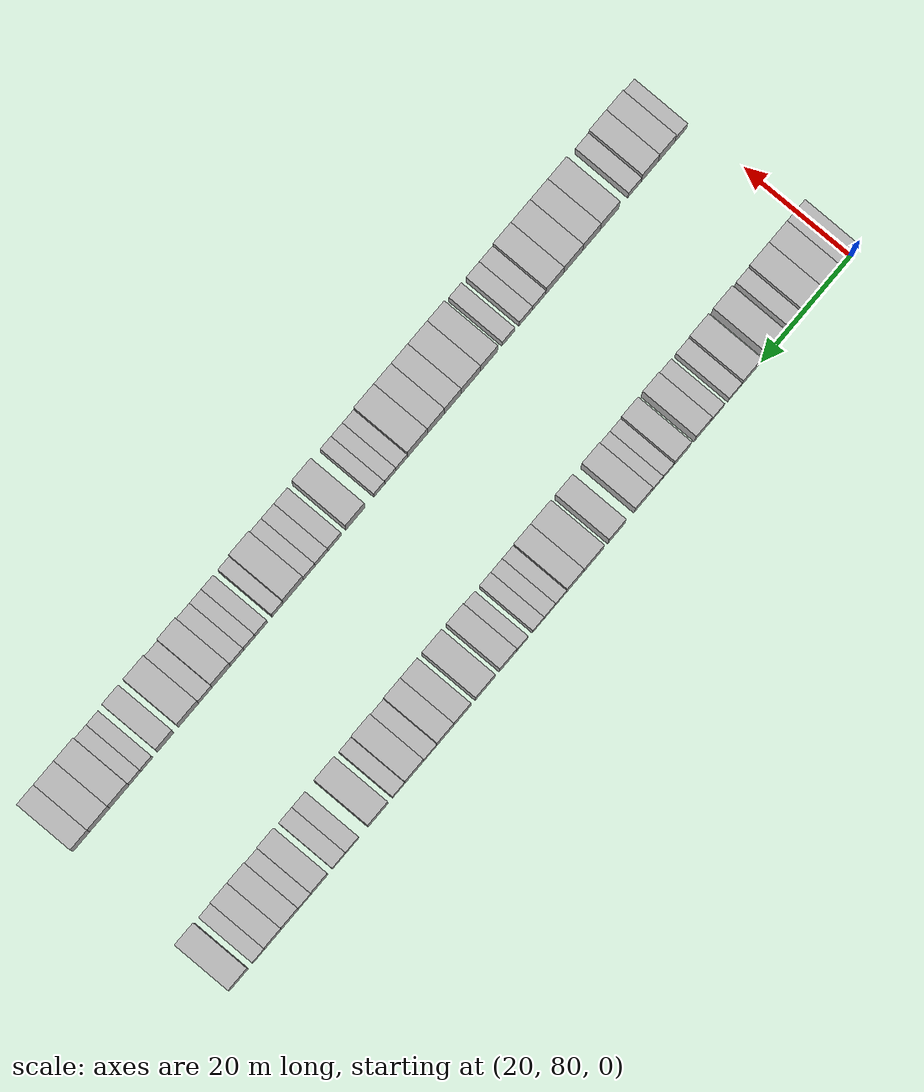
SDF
<sdf version="1.6">
 <world name="default">
  <model name="building_135">
   <static>1</static>
   <pose>25.0000 81.0025 0 0.000000 0.000000 0.000000</pose>
   <link name="link">
    <pose>0 0 4.50 0 0 0</pose>
    <collision name="collision"><geometry><box><size>10.0000 3.9946 9.0000</size></box></geometry></collision>
    <visual name="visual">
     <cast_shadows>0</cast_shadows>
     <geometry><box><size>10.0000 3.9946 9.0000</size></box></geometry>
     <material>
      <script>
       <uri>model://HANNAS_wall/materials/scripts</uri>
       <uri>model://HANNAS_wall/materials/textures</uri>
       <name>vrc/HANNAS_wall</name>
      </script>
     </material>
    </visual>
   </link>
  </model>
  <model name="building_136">
   <static>1</static>
   <pose>25.0000 85.0205 0 0.000000 0.000000 0.000000</pose>
   <link name="link">
    <pose>0 0 4.50 0 0 0</pose>
    <collision name="collision"><geometry><box><size>10.0000 4.0415 9.0000</size></box></geometry></collision>
    <visual name="visual">
     <cast_shadows>0</cast_shadows>
     <geometry><box><size>10.0000 4.0415 9.0000</size></box></geometry>
     <material>
      <script>
       <uri>model://HANNAS_wall/materials/scripts</uri>
       <uri>model://HANNAS_wall/materials/textures</uri>
       <name>vrc/HANNAS_wall</name>
      </script>
     </material>
    </visual>
   </link>
  </model>
  <model name="building_137">
   <static>1</static>
   <pose>25.0000 89.2116 0 0.000000 0.000000 0.000000</pose>
   <link name="link">
    <pose>0 0 4.50 0 0 0</pose>
    <collision name="collision"><geometry><box><size>10.0000 4.3407 9.0000</size></box></geometry></collision>
    <visual name="visual">
     <cast_shadows>0</cast_shadows>
     <geometry><box><size>10.0000 4.3407 9.0000</size></box></geometry>
     <material>
      <script>
       <uri>model://HANNAS_wall/materials/scripts</uri>
       <uri>model://HANNAS_wall/materials/textures</uri>
       <name>vrc/HANNAS_wall</name>
      </script>
     </material>
    </visual>
   </link>
  </model>
  <model name="building_138">
   <static>1</static>
   <pose>25.0000 92.7834 0 0.000000 0.000000 0.000000</pose>
   <link name="link">
    <pose>0 0 3.00 0 0 0</pose>
    <collision name="collision"><geometry><box><size>10.0000 2.8030 6.0000</size></box></geometry></collision>
    <visual name="visual">
     <cast_shadows>0</cast_shadows>
     <geometry><box><size>10.0000 2.8030 6.0000</size></box></geometry>
     <material>
      <script>
       <uri>model://HANNAS_wall/materials/scripts</uri>
       <uri>model://HANNAS_wall/materials/textures</uri>
       <name>vrc/HANNAS_wall</name>
      </script>
     </material>
    </visual>
   </link>
  </model>
  <model name="building_139">
   <static>1</static>
   <pose>25.0000 97.3180 0 0.000000 0.000000 0.000000</pose>
   <link name="link">
    <pose>0 0 4.50 0 0 0</pose>
    <collision name="collision"><geometry><box><size>10.0000 4.2662 9.0000</size></box></geometry></collision>
    <visual name="visual">
     <cast_shadows>0</cast_shadows>
     <geometry><box><size>10.0000 4.2662 9.0000</size></box></geometry>
     <material>
      <script>
       <uri>model://HANNAS_wall/materials/scripts</uri>
       <uri>model://HANNAS_wall/materials/textures</uri>
       <name>vrc/HANNAS_wall</name>
      </script>
     </material>
    </visual>
   </link>
  </model>
  <model name="building_140">
   <static>1</static>
   <pose>25.0000 102.5534 0 0.000000 0.000000 0.000000</pose>
   <link name="link">
    <pose>0 0 4.50 0 0 0</pose>
    <collision name="collision"><geometry><box><size>10.0000 4.2045 9.0000</size></box></geometry></collision>
    <visual name="visual">
     <cast_shadows>0</cast_shadows>
     <geometry><box><size>10.0000 4.2045 9.0000</size></box></geometry>
     <material>
      <script>
       <uri>model://HANNAS_wall/materials/scripts</uri>
       <uri>model://HANNAS_wall/materials/textures</uri>
       <name>vrc/HANNAS_wall</name>
      </script>
     </material>
    </visual>
   </link>
  </model>
  <model name="building_141">
   <static>1</static>
   <pose>25.0000 106.1143 0 0.000000 0.000000 0.000000</pose>
   <link name="link">
    <pose>0 0 3.00 0 0 0</pose>
    <collision name="collision"><geometry><box><size>10.0000 2.9174 6.0000</size></box></geometry></collision>
    <visual name="visual">
     <cast_shadows>0</cast_shadows>
     <geometry><box><size>10.0000 2.9174 6.0000</size></box></geometry>
     <material>
      <script>
       <uri>model://HANNAS_wall/materials/scripts</uri>
       <uri>model://HANNAS_wall/materials/textures</uri>
       <name>vrc/HANNAS_wall</name>
      </script>
     </material>
    </visual>
   </link>
  </model>
  <model name="building_142">
   <static>1</static>
   <pose>25.0000 110.0059 0 0.000000 0.000000 0.000000</pose>
   <link name="link">
    <pose>0 0 3.00 0 0 0</pose>
    <collision name="collision"><geometry><box><size>10.0000 2.8657 6.0000</size></box></geometry></collision>
    <visual name="visual">
     <cast_shadows>0</cast_shadows>
     <geometry><box><size>10.0000 2.8657 6.0000</size></box></geometry>
     <material>
      <script>
       <uri>model://HANNAS_wall/materials/scripts</uri>
       <uri>model://HANNAS_wall/materials/textures</uri>
       <name>vrc/HANNAS_wall</name>
      </script>
     </material>
    </visual>
   </link>
  </model>
  <model name="building_143">
   <static>1</static>
   <pose>25.0000 113.2572 0 0.000000 0.000000 0.000000</pose>
   <link name="link">
    <pose>0 0 4.50 0 0 0</pose>
    <collision name="collision"><geometry><box><size>10.0000 3.6370 9.0000</size></box></geometry></collision>
    <visual name="visual">
     <cast_shadows>0</cast_shadows>
     <geometry><box><size>10.0000 3.6370 9.0000</size></box></geometry>
     <material>
      <script>
       <uri>model://HANNAS_wall/materials/scripts</uri>
       <uri>model://HANNAS_wall/materials/textures</uri>
       <name>vrc/HANNAS_wall</name>
      </script>
     </material>
    </visual>
   </link>
  </model>
  <model name="building_144">
   <static>1</static>
   <pose>25.0000 117.9336 0 0.000000 0.000000 0.000000</pose>
   <link name="link">
    <pose>0 0 4.50 0 0 0</pose>
    <collision name="collision"><geometry><box><size>10.0000 3.7158 9.0000</size></box></geometry></collision>
    <visual name="visual">
     <cast_shadows>0</cast_shadows>
     <geometry><box><size>10.0000 3.7158 9.0000</size></box></geometry>
     <material>
      <script>
       <uri>model://HANNAS_wall/materials/scripts</uri>
       <uri>model://HANNAS_wall/materials/textures</uri>
       <name>vrc/HANNAS_wall</name>
      </script>
     </material>
    </visual>
   </link>
  </model>
  <model name="building_145">
   <static>1</static>
   <pose>25.0000 120.9934 0 0.000000 0.000000 0.000000</pose>
   <link name="link">
    <pose>0 0 3.00 0 0 0</pose>
    <collision name="collision"><geometry><box><size>10.0000 2.4037 6.0000</size></box></geometry></collision>
    <visual name="visual">
     <cast_shadows>0</cast_shadows>
     <geometry><box><size>10.0000 2.4037 6.0000</size></box></geometry>
     <material>
      <script>
       <uri>model://HANNAS_wall/materials/scripts</uri>
       <uri>model://HANNAS_wall/materials/textures</uri>
       <name>vrc/HANNAS_wall</name>
      </script>
     </material>
    </visual>
   </link>
  </model>
  <model name="building_146">
   <static>1</static>
   <pose>25.0000 123.4049 0 0.000000 0.000000 0.000000</pose>
   <link name="link">
    <pose>0 0 3.00 0 0 0</pose>
    <collision name="collision"><geometry><box><size>10.0000 2.4194 6.0000</size></box></geometry></collision>
    <visual name="visual">
     <cast_shadows>0</cast_shadows>
     <geometry><box><size>10.0000 2.4194 6.0000</size></box></geometry>
     <material>
      <script>
       <uri>model://HANNAS_wall/materials/scripts</uri>
       <uri>model://HANNAS_wall/materials/textures</uri>
       <name>vrc/HANNAS_wall</name>
      </script>
     </material>
    </visual>
   </link>
  </model>
  <model name="building_147">
   <static>1</static>
   <pose>25.0000 126.5805 0 0.000000 0.000000 0.000000</pose>
   <link name="link">
    <pose>0 0 4.50 0 0 0</pose>
    <collision name="collision"><geometry><box><size>10.0000 3.9317 9.0000</size></box></geometry></collision>
    <visual name="visual">
     <cast_shadows>0</cast_shadows>
     <geometry><box><size>10.0000 3.9317 9.0000</size></box></geometry>
     <material>
      <script>
       <uri>model://HANNAS_wall/materials/scripts</uri>
       <uri>model://HANNAS_wall/materials/textures</uri>
       <name>vrc/HANNAS_wall</name>
      </script>
     </material>
    </visual>
   </link>
  </model>
  <model name="building_148">
   <static>1</static>
   <pose>25.0000 132.4584 0 0.000000 0.000000 0.000000</pose>
   <link name="link">
    <pose>0 0 4.50 0 0 0</pose>
    <collision name="collision"><geometry><box><size>10.0000 3.8242 9.0000</size></box></geometry></collision>
    <visual name="visual">
     <cast_shadows>0</cast_shadows>
     <geometry><box><size>10.0000 3.8242 9.0000</size></box></geometry>
     <material>
      <script>
       <uri>model://HANNAS_wall/materials/scripts</uri>
       <uri>model://HANNAS_wall/materials/textures</uri>
       <name>vrc/HANNAS_wall</name>
      </script>
     </material>
    </visual>
   </link>
  </model>
  <model name="building_149">
   <static>1</static>
   <pose>25.0000 137.6101 0 0.000000 0.000000 0.000000</pose>
   <link name="link">
    <pose>0 0 4.50 0 0 0</pose>
    <collision name="collision"><geometry><box><size>10.0000 4.4792 9.0000</size></box></geometry></collision>
    <visual name="visual">
     <cast_shadows>0</cast_shadows>
     <geometry><box><size>10.0000 4.4792 9.0000</size></box></geometry>
     <material>
      <script>
       <uri>model://HANNAS_wall/materials/scripts</uri>
       <uri>model://HANNAS_wall/materials/textures</uri>
       <name>vrc/HANNAS_wall</name>
      </script>
     </material>
    </visual>
   </link>
  </model>
  <model name="building_150">
   <static>1</static>
   <pose>25.0000 141.7376 0 0.000000 0.000000 0.000000</pose>
   <link name="link">
    <pose>0 0 4.50 0 0 0</pose>
    <collision name="collision"><geometry><box><size>10.0000 3.7758 9.0000</size></box></geometry></collision>
    <visual name="visual">
     <cast_shadows>0</cast_shadows>
     <geometry><box><size>10.0000 3.7758 9.0000</size></box></geometry>
     <material>
      <script>
       <uri>model://HANNAS_wall/materials/scripts</uri>
       <uri>model://HANNAS_wall/materials/textures</uri>
       <name>vrc/HANNAS_wall</name>
      </script>
     </material>
    </visual>
   </link>
  </model>
  <model name="building_151">
   <static>1</static>
   <pose>25.0000 144.8500 0 0.000000 0.000000 0.000000</pose>
   <link name="link">
    <pose>0 0 3.00 0 0 0</pose>
    <collision name="collision"><geometry><box><size>10.0000 2.4491 6.0000</size></box></geometry></collision>
    <visual name="visual">
     <cast_shadows>0</cast_shadows>
     <geometry><box><size>10.0000 2.4491 6.0000</size></box></geometry>
     <material>
      <script>
       <uri>model://HANNAS_wall/materials/scripts</uri>
       <uri>model://HANNAS_wall/materials/textures</uri>
       <name>vrc/HANNAS_wall</name>
      </script>
     </material>
    </visual>
   </link>
  </model>
  <model name="building_152">
   <static>1</static>
   <pose>25.0000 147.3446 0 0.000000 0.000000 0.000000</pose>
   <link name="link">
    <pose>0 0 3.00 0 0 0</pose>
    <collision name="collision"><geometry><box><size>10.0000 2.5401 6.0000</size></box></geometry></collision>
    <visual name="visual">
     <cast_shadows>0</cast_shadows>
     <geometry><box><size>10.0000 2.5401 6.0000</size></box></geometry>
     <material>
      <script>
       <uri>model://HANNAS_wall/materials/scripts</uri>
       <uri>model://HANNAS_wall/materials/textures</uri>
       <name>vrc/HANNAS_wall</name>
      </script>
     </material>
    </visual>
   </link>
  </model>
  <model name="building_153">
   <static>1</static>
   <pose>25.0000 149.8898 0 0.000000 0.000000 0.000000</pose>
   <link name="link">
    <pose>0 0 3.00 0 0 0</pose>
    <collision name="collision"><geometry><box><size>10.0000 2.5503 6.0000</size></box></geometry></collision>
    <visual name="visual">
     <cast_shadows>0</cast_shadows>
     <geometry><box><size>10.0000 2.5503 6.0000</size></box></geometry>
     <material>
      <script>
       <uri>model://HANNAS_wall/materials/scripts</uri>
       <uri>model://HANNAS_wall/materials/textures</uri>
       <name>vrc/HANNAS_wall</name>
      </script>
     </material>
    </visual>
   </link>
  </model>
  <model name="building_154">
   <static>1</static>
   <pose>25.0000 153.4374 0 0.000000 0.000000 0.000000</pose>
   <link name="link">
    <pose>0 0 3.00 0 0 0</pose>
    <collision name="collision"><geometry><box><size>10.0000 2.5448 6.0000</size></box></geometry></collision>
    <visual name="visual">
     <cast_shadows>0</cast_shadows>
     <geometry><box><size>10.0000 2.5448 6.0000</size></box></geometry>
     <material>
      <script>
       <uri>model://HANNAS_wall/materials/scripts</uri>
       <uri>model://HANNAS_wall/materials/textures</uri>
       <name>vrc/HANNAS_wall</name>
      </script>
     </material>
    </visual>
   </link>
  </model>
  <model name="building_155">
   <static>1</static>
   <pose>25.0000 156.6061 0 0.000000 0.000000 0.000000</pose>
   <link name="link">
    <pose>0 0 4.50 0 0 0</pose>
    <collision name="collision"><geometry><box><size>10.0000 3.7926 9.0000</size></box></geometry></collision>
    <visual name="visual">
     <cast_shadows>0</cast_shadows>
     <geometry><box><size>10.0000 3.7926 9.0000</size></box></geometry>
     <material>
      <script>
       <uri>model://HANNAS_wall/materials/scripts</uri>
       <uri>model://HANNAS_wall/materials/textures</uri>
       <name>vrc/HANNAS_wall</name>
      </script>
     </material>
    </visual>
   </link>
  </model>
  <model name="building_156">
   <static>1</static>
   <pose>25.0000 161.6834 0 0.000000 0.000000 0.000000</pose>
   <link name="link">
    <pose>0 0 4.50 0 0 0</pose>
    <collision name="collision"><geometry><box><size>10.0000 4.3620 9.0000</size></box></geometry></collision>
    <visual name="visual">
     <cast_shadows>0</cast_shadows>
     <geometry><box><size>10.0000 4.3620 9.0000</size></box></geometry>
     <material>
      <script>
       <uri>model://HANNAS_wall/materials/scripts</uri>
       <uri>model://HANNAS_wall/materials/textures</uri>
       <name>vrc/HANNAS_wall</name>
      </script>
     </material>
    </visual>
   </link>
  </model>
  <model name="building_157">
   <static>1</static>
   <pose>25.0000 166.7427 0 0.000000 0.000000 0.000000</pose>
   <link name="link">
    <pose>0 0 4.50 0 0 0</pose>
    <collision name="collision"><geometry><box><size>10.0000 3.7567 9.0000</size></box></geometry></collision>
    <visual name="visual">
     <cast_shadows>0</cast_shadows>
     <geometry><box><size>10.0000 3.7567 9.0000</size></box></geometry>
     <material>
      <script>
       <uri>model://HANNAS_wall/materials/scripts</uri>
       <uri>model://HANNAS_wall/materials/textures</uri>
       <name>vrc/HANNAS_wall</name>
      </script>
     </material>
    </visual>
   </link>
  </model>
  <model name="building_158">
   <static>1</static>
   <pose>25.0000 170.4803 0 0.000000 0.000000 0.000000</pose>
   <link name="link">
    <pose>0 0 4.50 0 0 0</pose>
    <collision name="collision"><geometry><box><size>10.0000 3.7186 9.0000</size></box></geometry></collision>
    <visual name="visual">
     <cast_shadows>0</cast_shadows>
     <geometry><box><size>10.0000 3.7186 9.0000</size></box></geometry>
     <material>
      <script>
       <uri>model://HANNAS_wall/materials/scripts</uri>
       <uri>model://HANNAS_wall/materials/textures</uri>
       <name>vrc/HANNAS_wall</name>
      </script>
     </material>
    </visual>
   </link>
  </model>
  <model name="building_159">
   <static>1</static>
   <pose>25.0000 173.8217 0 0.000000 0.000000 0.000000</pose>
   <link name="link">
    <pose>0 0 3.00 0 0 0</pose>
    <collision name="collision"><geometry><box><size>10.0000 2.9641 6.0000</size></box></geometry></collision>
    <visual name="visual">
     <cast_shadows>0</cast_shadows>
     <geometry><box><size>10.0000 2.9641 6.0000</size></box></geometry>
     <material>
      <script>
       <uri>model://HANNAS_wall/materials/scripts</uri>
       <uri>model://HANNAS_wall/materials/textures</uri>
       <name>vrc/HANNAS_wall</name>
      </script>
     </material>
    </visual>
   </link>
  </model>
  <model name="building_160">
   <static>1</static>
   <pose>25.0000 177.3919 0 0.000000 0.000000 0.000000</pose>
   <link name="link">
    <pose>0 0 4.50 0 0 0</pose>
    <collision name="collision"><geometry><box><size>10.0000 4.1765 9.0000</size></box></geometry></collision>
    <visual name="visual">
     <cast_shadows>0</cast_shadows>
     <geometry><box><size>10.0000 4.1765 9.0000</size></box></geometry>
     <material>
      <script>
       <uri>model://HANNAS_wall/materials/scripts</uri>
       <uri>model://HANNAS_wall/materials/textures</uri>
       <name>vrc/HANNAS_wall</name>
      </script>
     </material>
    </visual>
   </link>
  </model>
  <model name="building_161">
   <static>1</static>
   <pose>25.0000 180.8398 0 0.000000 0.000000 0.000000</pose>
   <link name="link">
    <pose>0 0 3.00 0 0 0</pose>
    <collision name="collision"><geometry><box><size>10.0000 2.7191 6.0000</size></box></geometry></collision>
    <visual name="visual">
     <cast_shadows>0</cast_shadows>
     <geometry><box><size>10.0000 2.7191 6.0000</size></box></geometry>
     <material>
      <script>
       <uri>model://HANNAS_wall/materials/scripts</uri>
       <uri>model://HANNAS_wall/materials/textures</uri>
       <name>vrc/HANNAS_wall</name>
      </script>
     </material>
    </visual>
   </link>
  </model>
  <model name="building_162">
   <static>1</static>
   <pose>25.0000 185.4152 0 0.000000 0.000000 0.000000</pose>
   <link name="link">
    <pose>0 0 4.50 0 0 0</pose>
    <collision name="collision"><geometry><box><size>10.0000 4.4318 9.0000</size></box></geometry></collision>
    <visual name="visual">
     <cast_shadows>0</cast_shadows>
     <geometry><box><size>10.0000 4.4318 9.0000</size></box></geometry>
     <material>
      <script>
       <uri>model://HANNAS_wall/materials/scripts</uri>
       <uri>model://HANNAS_wall/materials/textures</uri>
       <name>vrc/HANNAS_wall</name>
      </script>
     </material>
    </visual>
   </link>
  </model>
  <model name="building_163">
   <static>1</static>
   <pose>25.0000 191.1005 0 0.000000 0.000000 0.000000</pose>
   <link name="link">
    <pose>0 0 3.00 0 0 0</pose>
    <collision name="collision"><geometry><box><size>10.0000 2.9388 6.0000</size></box></geometry></collision>
    <visual name="visual">
     <cast_shadows>0</cast_shadows>
     <geometry><box><size>10.0000 2.9388 6.0000</size></box></geometry>
     <material>
      <script>
       <uri>model://HANNAS_wall/materials/scripts</uri>
       <uri>model://HANNAS_wall/materials/textures</uri>
       <name>vrc/HANNAS_wall</name>
      </script>
     </material>
    </visual>
   </link>
  </model>
  <model name="building_164">
   <static>1</static>
   <pose>25.0000 194.0287 0 0.000000 0.000000 0.000000</pose>
   <link name="link">
    <pose>0 0 3.00 0 0 0</pose>
    <collision name="collision"><geometry><box><size>10.0000 2.9175 6.0000</size></box></geometry></collision>
    <visual name="visual">
     <cast_shadows>0</cast_shadows>
     <geometry><box><size>10.0000 2.9175 6.0000</size></box></geometry>
     <material>
      <script>
       <uri>model://HANNAS_wall/materials/scripts</uri>
       <uri>model://HANNAS_wall/materials/textures</uri>
       <name>vrc/HANNAS_wall</name>
      </script>
     </material>
    </visual>
   </link>
  </model>
  <model name="building_165">
   <static>1</static>
   <pose>25.0000 198.3451 0 0.000000 0.000000 0.000000</pose>
   <link name="link">
    <pose>0 0 4.50 0 0 0</pose>
    <collision name="collision"><geometry><box><size>10.0000 3.7153 9.0000</size></box></geometry></collision>
    <visual name="visual">
     <cast_shadows>0</cast_shadows>
     <geometry><box><size>10.0000 3.7153 9.0000</size></box></geometry>
     <material>
      <script>
       <uri>model://HANNAS_wall/materials/scripts</uri>
       <uri>model://HANNAS_wall/materials/textures</uri>
       <name>vrc/HANNAS_wall</name>
      </script>
     </material>
    </visual>
   </link>
  </model>
  <model name="building_166">
   <static>1</static>
   <pose>25.0000 201.5795 0 0.000000 0.000000 0.000000</pose>
   <link name="link">
    <pose>0 0 3.00 0 0 0</pose>
    <collision name="collision"><geometry><box><size>10.0000 2.7534 6.0000</size></box></geometry></collision>
    <visual name="visual">
     <cast_shadows>0</cast_shadows>
     <geometry><box><size>10.0000 2.7534 6.0000</size></box></geometry>
     <material>
      <script>
       <uri>model://HANNAS_wall/materials/scripts</uri>
       <uri>model://HANNAS_wall/materials/textures</uri>
       <name>vrc/HANNAS_wall</name>
      </script>
     </material>
    </visual>
   </link>
  </model>
  <model name="building_167">
   <static>1</static>
   <pose>25.0000 204.8351 0 0.000000 0.000000 0.000000</pose>
   <link name="link">
    <pose>0 0 4.50 0 0 0</pose>
    <collision name="collision"><geometry><box><size>10.0000 3.7579 9.0000</size></box></geometry></collision>
    <visual name="visual">
     <cast_shadows>0</cast_shadows>
     <geometry><box><size>10.0000 3.7579 9.0000</size></box></geometry>
     <material>
      <script>
       <uri>model://HANNAS_wall/materials/scripts</uri>
       <uri>model://HANNAS_wall/materials/textures</uri>
       <name>vrc/HANNAS_wall</name>
      </script>
     </material>
    </visual>
   </link>
  </model>
  <model name="building_168">
   <static>1</static>
   <pose>25.0000 208.5731 0 0.000000 0.000000 0.000000</pose>
   <link name="link">
    <pose>0 0 4.50 0 0 0</pose>
    <collision name="collision"><geometry><box><size>10.0000 3.7181 9.0000</size></box></geometry></collision>
    <visual name="visual">
     <cast_shadows>0</cast_shadows>
     <geometry><box><size>10.0000 3.7181 9.0000</size></box></geometry>
     <material>
      <script>
       <uri>model://HANNAS_wall/materials/scripts</uri>
       <uri>model://HANNAS_wall/materials/textures</uri>
       <name>vrc/HANNAS_wall</name>
      </script>
     </material>
    </visual>
   </link>
  </model>
  <model name="building_169">
   <static>1</static>
   <pose>25.0000 211.7623 0 0.000000 0.000000 0.000000</pose>
   <link name="link">
    <pose>0 0 3.00 0 0 0</pose>
    <collision name="collision"><geometry><box><size>10.0000 2.6602 6.0000</size></box></geometry></collision>
    <visual name="visual">
     <cast_shadows>0</cast_shadows>
     <geometry><box><size>10.0000 2.6602 6.0000</size></box></geometry>
     <material>
      <script>
       <uri>model://HANNAS_wall/materials/scripts</uri>
       <uri>model://HANNAS_wall/materials/textures</uri>
       <name>vrc/HANNAS_wall</name>
      </script>
     </material>
    </visual>
   </link>
  </model>
  <model name="building_170">
   <static>1</static>
   <pose>25.0000 216.1671 0 0.000000 0.000000 0.000000</pose>
   <link name="link">
    <pose>0 0 4.50 0 0 0</pose>
    <collision name="collision"><geometry><box><size>10.0000 4.1495 9.0000</size></box></geometry></collision>
    <visual name="visual">
     <cast_shadows>0</cast_shadows>
     <geometry><box><size>10.0000 4.1495 9.0000</size></box></geometry>
     <material>
      <script>
       <uri>model://HANNAS_wall/materials/scripts</uri>
       <uri>model://HANNAS_wall/materials/textures</uri>
       <name>vrc/HANNAS_wall</name>
      </script>
     </material>
    </visual>
   </link>
  </model>
  <model name="building_373">
   <static>1</static>
   <pose>55.0000 82.4450 0 0.000000 0.000000 0.000000</pose>
   <link name="link">
    <pose>0 0 3.00 0 0 0</pose>
    <collision name="collision"><geometry><box><size>10.0000 2.6679 6.0000</size></box></geometry></collision>
    <visual name="visual">
     <cast_shadows>0</cast_shadows>
     <geometry><box><size>10.0000 2.6679 6.0000</size></box></geometry>
     <material>
      <script>
       <uri>model://HANNAS_wall/materials/scripts</uri>
       <uri>model://HANNAS_wall/materials/textures</uri>
       <name>vrc/HANNAS_wall</name>
      </script>
     </material>
    </visual>
   </link>
  </model>
  <model name="building_374">
   <static>1</static>
   <pose>55.0000 85.6256 0 0.000000 0.000000 0.000000</pose>
   <link name="link">
    <pose>0 0 4.50 0 0 0</pose>
    <collision name="collision"><geometry><box><size>10.0000 3.6933 9.0000</size></box></geometry></collision>
    <visual name="visual">
     <cast_shadows>0</cast_shadows>
     <geometry><box><size>10.0000 3.6933 9.0000</size></box></geometry>
     <material>
      <script>
       <uri>model://HANNAS_wall/materials/scripts</uri>
       <uri>model://HANNAS_wall/materials/textures</uri>
       <name>vrc/HANNAS_wall</name>
      </script>
     </material>
    </visual>
   </link>
  </model>
  <model name="building_375">
   <static>1</static>
   <pose>55.0000 89.4006 0 0.000000 0.000000 0.000000</pose>
   <link name="link">
    <pose>0 0 4.50 0 0 0</pose>
    <collision name="collision"><geometry><box><size>10.0000 3.8567 9.0000</size></box></geometry></collision>
    <visual name="visual">
     <cast_shadows>0</cast_shadows>
     <geometry><box><size>10.0000 3.8567 9.0000</size></box></geometry>
     <material>
      <script>
       <uri>model://HANNAS_wall/materials/scripts</uri>
       <uri>model://HANNAS_wall/materials/textures</uri>
       <name>vrc/HANNAS_wall</name>
      </script>
     </material>
    </visual>
   </link>
  </model>
  <model name="building_376">
   <static>1</static>
   <pose>55.0000 92.8031 0 0.000000 0.000000 0.000000</pose>
   <link name="link">
    <pose>0 0 3.00 0 0 0</pose>
    <collision name="collision"><geometry><box><size>10.0000 2.9482 6.0000</size></box></geometry></collision>
    <visual name="visual">
     <cast_shadows>0</cast_shadows>
     <geometry><box><size>10.0000 2.9482 6.0000</size></box></geometry>
     <material>
      <script>
       <uri>model://HANNAS_wall/materials/scripts</uri>
       <uri>model://HANNAS_wall/materials/textures</uri>
       <name>vrc/HANNAS_wall</name>
      </script>
     </material>
    </visual>
   </link>
  </model>
  <model name="building_377">
   <static>1</static>
   <pose>55.0000 98.3676 0 0.000000 0.000000 0.000000</pose>
   <link name="link">
    <pose>0 0 4.50 0 0 0</pose>
    <collision name="collision"><geometry><box><size>10.0000 4.1808 9.0000</size></box></geometry></collision>
    <visual name="visual">
     <cast_shadows>0</cast_shadows>
     <geometry><box><size>10.0000 4.1808 9.0000</size></box></geometry>
     <material>
      <script>
       <uri>model://HANNAS_wall/materials/scripts</uri>
       <uri>model://HANNAS_wall/materials/textures</uri>
       <name>vrc/HANNAS_wall</name>
      </script>
     </material>
    </visual>
   </link>
  </model>
  <model name="building_378">
   <static>1</static>
   <pose>55.0000 102.4167 0 0.000000 0.000000 0.000000</pose>
   <link name="link">
    <pose>0 0 4.50 0 0 0</pose>
    <collision name="collision"><geometry><box><size>10.0000 3.9175 9.0000</size></box></geometry></collision>
    <visual name="visual">
     <cast_shadows>0</cast_shadows>
     <geometry><box><size>10.0000 3.9175 9.0000</size></box></geometry>
     <material>
      <script>
       <uri>model://HANNAS_wall/materials/scripts</uri>
       <uri>model://HANNAS_wall/materials/textures</uri>
       <name>vrc/HANNAS_wall</name>
      </script>
     </material>
    </visual>
   </link>
  </model>
  <model name="building_379">
   <static>1</static>
   <pose>55.0000 106.5071 0 0.000000 0.000000 0.000000</pose>
   <link name="link">
    <pose>0 0 4.50 0 0 0</pose>
    <collision name="collision"><geometry><box><size>10.0000 4.2632 9.0000</size></box></geometry></collision>
    <visual name="visual">
     <cast_shadows>0</cast_shadows>
     <geometry><box><size>10.0000 4.2632 9.0000</size></box></geometry>
     <material>
      <script>
       <uri>model://HANNAS_wall/materials/scripts</uri>
       <uri>model://HANNAS_wall/materials/textures</uri>
       <name>vrc/HANNAS_wall</name>
      </script>
     </material>
    </visual>
   </link>
  </model>
  <model name="building_380">
   <static>1</static>
   <pose>55.0000 110.6413 0 0.000000 0.000000 0.000000</pose>
   <link name="link">
    <pose>0 0 4.50 0 0 0</pose>
    <collision name="collision"><geometry><box><size>10.0000 4.0053 9.0000</size></box></geometry></collision>
    <visual name="visual">
     <cast_shadows>0</cast_shadows>
     <geometry><box><size>10.0000 4.0053 9.0000</size></box></geometry>
     <material>
      <script>
       <uri>model://HANNAS_wall/materials/scripts</uri>
       <uri>model://HANNAS_wall/materials/textures</uri>
       <name>vrc/HANNAS_wall</name>
      </script>
     </material>
    </visual>
   </link>
  </model>
  <model name="building_381">
   <static>1</static>
   <pose>55.0000 114.1329 0 0.000000 0.000000 0.000000</pose>
   <link name="link">
    <pose>0 0 3.00 0 0 0</pose>
    <collision name="collision"><geometry><box><size>10.0000 2.9778 6.0000</size></box></geometry></collision>
    <visual name="visual">
     <cast_shadows>0</cast_shadows>
     <geometry><box><size>10.0000 2.9778 6.0000</size></box></geometry>
     <material>
      <script>
       <uri>model://HANNAS_wall/materials/scripts</uri>
       <uri>model://HANNAS_wall/materials/textures</uri>
       <name>vrc/HANNAS_wall</name>
      </script>
     </material>
    </visual>
   </link>
  </model>
  <model name="building_382">
   <static>1</static>
   <pose>55.0000 117.1041 0 0.000000 0.000000 0.000000</pose>
   <link name="link">
    <pose>0 0 3.00 0 0 0</pose>
    <collision name="collision"><geometry><box><size>10.0000 2.9645 6.0000</size></box></geometry></collision>
    <visual name="visual">
     <cast_shadows>0</cast_shadows>
     <geometry><box><size>10.0000 2.9645 6.0000</size></box></geometry>
     <material>
      <script>
       <uri>model://HANNAS_wall/materials/scripts</uri>
       <uri>model://HANNAS_wall/materials/textures</uri>
       <name>vrc/HANNAS_wall</name>
      </script>
     </material>
    </visual>
   </link>
  </model>
  <model name="building_383">
   <static>1</static>
   <pose>55.0000 120.9810 0 0.000000 0.000000 0.000000</pose>
   <link name="link">
    <pose>0 0 3.00 0 0 0</pose>
    <collision name="collision"><geometry><box><size>10.0000 2.7894 6.0000</size></box></geometry></collision>
    <visual name="visual">
     <cast_shadows>0</cast_shadows>
     <geometry><box><size>10.0000 2.7894 6.0000</size></box></geometry>
     <material>
      <script>
       <uri>model://HANNAS_wall/materials/scripts</uri>
       <uri>model://HANNAS_wall/materials/textures</uri>
       <name>vrc/HANNAS_wall</name>
      </script>
     </material>
    </visual>
   </link>
  </model>
  <model name="building_384">
   <static>1</static>
   <pose>55.0000 125.2732 0 0.000000 0.000000 0.000000</pose>
   <link name="link">
    <pose>0 0 4.50 0 0 0</pose>
    <collision name="collision"><geometry><box><size>10.0000 3.7949 9.0000</size></box></geometry></collision>
    <visual name="visual">
     <cast_shadows>0</cast_shadows>
     <geometry><box><size>10.0000 3.7949 9.0000</size></box></geometry>
     <material>
      <script>
       <uri>model://HANNAS_wall/materials/scripts</uri>
       <uri>model://HANNAS_wall/materials/textures</uri>
       <name>vrc/HANNAS_wall</name>
      </script>
     </material>
    </visual>
   </link>
  </model>
  <model name="building_385">
   <static>1</static>
   <pose>55.0000 129.3147 0 0.000000 0.000000 0.000000</pose>
   <link name="link">
    <pose>0 0 4.50 0 0 0</pose>
    <collision name="collision"><geometry><box><size>10.0000 4.2881 9.0000</size></box></geometry></collision>
    <visual name="visual">
     <cast_shadows>0</cast_shadows>
     <geometry><box><size>10.0000 4.2881 9.0000</size></box></geometry>
     <material>
      <script>
       <uri>model://HANNAS_wall/materials/scripts</uri>
       <uri>model://HANNAS_wall/materials/textures</uri>
       <name>vrc/HANNAS_wall</name>
      </script>
     </material>
    </visual>
   </link>
  </model>
  <model name="building_386">
   <static>1</static>
   <pose>55.0000 133.3067 0 0.000000 0.000000 0.000000</pose>
   <link name="link">
    <pose>0 0 4.50 0 0 0</pose>
    <collision name="collision"><geometry><box><size>10.0000 3.6959 9.0000</size></box></geometry></collision>
    <visual name="visual">
     <cast_shadows>0</cast_shadows>
     <geometry><box><size>10.0000 3.6959 9.0000</size></box></geometry>
     <material>
      <script>
       <uri>model://HANNAS_wall/materials/scripts</uri>
       <uri>model://HANNAS_wall/materials/textures</uri>
       <name>vrc/HANNAS_wall</name>
      </script>
     </material>
    </visual>
   </link>
  </model>
  <model name="building_387">
   <static>1</static>
   <pose>55.0000 137.0665 0 0.000000 0.000000 0.000000</pose>
   <link name="link">
    <pose>0 0 4.50 0 0 0</pose>
    <collision name="collision"><geometry><box><size>10.0000 3.8237 9.0000</size></box></geometry></collision>
    <visual name="visual">
     <cast_shadows>0</cast_shadows>
     <geometry><box><size>10.0000 3.8237 9.0000</size></box></geometry>
     <material>
      <script>
       <uri>model://HANNAS_wall/materials/scripts</uri>
       <uri>model://HANNAS_wall/materials/textures</uri>
       <name>vrc/HANNAS_wall</name>
      </script>
     </material>
    </visual>
   </link>
  </model>
  <model name="building_388">
   <static>1</static>
   <pose>55.0000 141.2183 0 0.000000 0.000000 0.000000</pose>
   <link name="link">
    <pose>0 0 4.50 0 0 0</pose>
    <collision name="collision"><geometry><box><size>10.0000 4.4799 9.0000</size></box></geometry></collision>
    <visual name="visual">
     <cast_shadows>0</cast_shadows>
     <geometry><box><size>10.0000 4.4799 9.0000</size></box></geometry>
     <material>
      <script>
       <uri>model://HANNAS_wall/materials/scripts</uri>
       <uri>model://HANNAS_wall/materials/textures</uri>
       <name>vrc/HANNAS_wall</name>
      </script>
     </material>
    </visual>
   </link>
  </model>
  <model name="building_389">
   <static>1</static>
   <pose>55.0000 144.7116 0 0.000000 0.000000 0.000000</pose>
   <link name="link">
    <pose>0 0 3.00 0 0 0</pose>
    <collision name="collision"><geometry><box><size>10.0000 2.5068 6.0000</size></box></geometry></collision>
    <visual name="visual">
     <cast_shadows>0</cast_shadows>
     <geometry><box><size>10.0000 2.5068 6.0000</size></box></geometry>
     <material>
      <script>
       <uri>model://HANNAS_wall/materials/scripts</uri>
       <uri>model://HANNAS_wall/materials/textures</uri>
       <name>vrc/HANNAS_wall</name>
      </script>
     </material>
    </visual>
   </link>
  </model>
  <model name="building_390">
   <static>1</static>
   <pose>55.0000 147.2185 0 0.000000 0.000000 0.000000</pose>
   <link name="link">
    <pose>0 0 3.00 0 0 0</pose>
    <collision name="collision"><geometry><box><size>10.0000 2.5068 6.0000</size></box></geometry></collision>
    <visual name="visual">
     <cast_shadows>0</cast_shadows>
     <geometry><box><size>10.0000 2.5068 6.0000</size></box></geometry>
     <material>
      <script>
       <uri>model://HANNAS_wall/materials/scripts</uri>
       <uri>model://HANNAS_wall/materials/textures</uri>
       <name>vrc/HANNAS_wall</name>
      </script>
     </material>
    </visual>
   </link>
  </model>
  <model name="building_391">
   <static>1</static>
   <pose>55.0000 149.6810 0 0.000000 0.000000 0.000000</pose>
   <link name="link">
    <pose>0 0 3.00 0 0 0</pose>
    <collision name="collision"><geometry><box><size>10.0000 2.4182 6.0000</size></box></geometry></collision>
    <visual name="visual">
     <cast_shadows>0</cast_shadows>
     <geometry><box><size>10.0000 2.4182 6.0000</size></box></geometry>
     <material>
      <script>
       <uri>model://HANNAS_wall/materials/scripts</uri>
       <uri>model://HANNAS_wall/materials/textures</uri>
       <name>vrc/HANNAS_wall</name>
      </script>
     </material>
    </visual>
   </link>
  </model>
  <model name="building_392">
   <static>1</static>
   <pose>55.0000 155.0066 0 0.000000 0.000000 0.000000</pose>
   <link name="link">
    <pose>0 0 4.50 0 0 0</pose>
    <collision name="collision"><geometry><box><size>10.0000 4.2330 9.0000</size></box></geometry></collision>
    <visual name="visual">
     <cast_shadows>0</cast_shadows>
     <geometry><box><size>10.0000 4.2330 9.0000</size></box></geometry>
     <material>
      <script>
       <uri>model://HANNAS_wall/materials/scripts</uri>
       <uri>model://HANNAS_wall/materials/textures</uri>
       <name>vrc/HANNAS_wall</name>
      </script>
     </material>
    </visual>
   </link>
  </model>
  <model name="building_393">
   <static>1</static>
   <pose>55.0000 159.6211 0 0.000000 0.000000 0.000000</pose>
   <link name="link">
    <pose>0 0 3.00 0 0 0</pose>
    <collision name="collision"><geometry><box><size>10.0000 2.9959 6.0000</size></box></geometry></collision>
    <visual name="visual">
     <cast_shadows>0</cast_shadows>
     <geometry><box><size>10.0000 2.9959 6.0000</size></box></geometry>
     <material>
      <script>
       <uri>model://HANNAS_wall/materials/scripts</uri>
       <uri>model://HANNAS_wall/materials/textures</uri>
       <name>vrc/HANNAS_wall</name>
      </script>
     </material>
    </visual>
   </link>
  </model>
  <model name="building_394">
   <static>1</static>
   <pose>55.0000 162.5194 0 0.000000 0.000000 0.000000</pose>
   <link name="link">
    <pose>0 0 3.00 0 0 0</pose>
    <collision name="collision"><geometry><box><size>10.0000 2.8007 6.0000</size></box></geometry></collision>
    <visual name="visual">
     <cast_shadows>0</cast_shadows>
     <geometry><box><size>10.0000 2.8007 6.0000</size></box></geometry>
     <material>
      <script>
       <uri>model://HANNAS_wall/materials/scripts</uri>
       <uri>model://HANNAS_wall/materials/textures</uri>
       <name>vrc/HANNAS_wall</name>
      </script>
     </material>
    </visual>
   </link>
  </model>
  <model name="building_395">
   <static>1</static>
   <pose>55.0000 165.2283 0 0.000000 0.000000 0.000000</pose>
   <link name="link">
    <pose>0 0 3.00 0 0 0</pose>
    <collision name="collision"><geometry><box><size>10.0000 2.6171 6.0000</size></box></geometry></collision>
    <visual name="visual">
     <cast_shadows>0</cast_shadows>
     <geometry><box><size>10.0000 2.6171 6.0000</size></box></geometry>
     <material>
      <script>
       <uri>model://HANNAS_wall/materials/scripts</uri>
       <uri>model://HANNAS_wall/materials/textures</uri>
       <name>vrc/HANNAS_wall</name>
      </script>
     </material>
    </visual>
   </link>
  </model>
  <model name="building_396">
   <static>1</static>
   <pose>55.0000 168.7685 0 0.000000 0.000000 0.000000</pose>
   <link name="link">
    <pose>0 0 4.50 0 0 0</pose>
    <collision name="collision"><geometry><box><size>10.0000 4.4634 9.0000</size></box></geometry></collision>
    <visual name="visual">
     <cast_shadows>0</cast_shadows>
     <geometry><box><size>10.0000 4.4634 9.0000</size></box></geometry>
     <material>
      <script>
       <uri>model://HANNAS_wall/materials/scripts</uri>
       <uri>model://HANNAS_wall/materials/textures</uri>
       <name>vrc/HANNAS_wall</name>
      </script>
     </material>
    </visual>
   </link>
  </model>
  <model name="building_397">
   <static>1</static>
   <pose>55.0000 172.2571 0 0.000000 0.000000 0.000000</pose>
   <link name="link">
    <pose>0 0 3.00 0 0 0</pose>
    <collision name="collision"><geometry><box><size>10.0000 2.5139 6.0000</size></box></geometry></collision>
    <visual name="visual">
     <cast_shadows>0</cast_shadows>
     <geometry><box><size>10.0000 2.5139 6.0000</size></box></geometry>
     <material>
      <script>
       <uri>model://HANNAS_wall/materials/scripts</uri>
       <uri>model://HANNAS_wall/materials/textures</uri>
       <name>vrc/HANNAS_wall</name>
      </script>
     </material>
    </visual>
   </link>
  </model>
  <model name="building_398">
   <static>1</static>
   <pose>55.0000 175.8484 0 0.000000 0.000000 0.000000</pose>
   <link name="link">
    <pose>0 0 3.00 0 0 0</pose>
    <collision name="collision"><geometry><box><size>10.0000 2.6687 6.0000</size></box></geometry></collision>
    <visual name="visual">
     <cast_shadows>0</cast_shadows>
     <geometry><box><size>10.0000 2.6687 6.0000</size></box></geometry>
     <material>
      <script>
       <uri>model://HANNAS_wall/materials/scripts</uri>
       <uri>model://HANNAS_wall/materials/textures</uri>
       <name>vrc/HANNAS_wall</name>
      </script>
     </material>
    </visual>
   </link>
  </model>
  <model name="building_399">
   <static>1</static>
   <pose>55.0000 178.4726 0 0.000000 0.000000 0.000000</pose>
   <link name="link">
    <pose>0 0 3.00 0 0 0</pose>
    <collision name="collision"><geometry><box><size>10.0000 2.5797 6.0000</size></box></geometry></collision>
    <visual name="visual">
     <cast_shadows>0</cast_shadows>
     <geometry><box><size>10.0000 2.5797 6.0000</size></box></geometry>
     <material>
      <script>
       <uri>model://HANNAS_wall/materials/scripts</uri>
       <uri>model://HANNAS_wall/materials/textures</uri>
       <name>vrc/HANNAS_wall</name>
      </script>
     </material>
    </visual>
   </link>
  </model>
  <model name="building_400">
   <static>1</static>
   <pose>55.0000 181.2467 0 0.000000 0.000000 0.000000</pose>
   <link name="link">
    <pose>0 0 3.00 0 0 0</pose>
    <collision name="collision"><geometry><box><size>10.0000 2.9684 6.0000</size></box></geometry></collision>
    <visual name="visual">
     <cast_shadows>0</cast_shadows>
     <geometry><box><size>10.0000 2.9684 6.0000</size></box></geometry>
     <material>
      <script>
       <uri>model://HANNAS_wall/materials/scripts</uri>
       <uri>model://HANNAS_wall/materials/textures</uri>
       <name>vrc/HANNAS_wall</name>
      </script>
     </material>
    </visual>
   </link>
  </model>
  <model name="building_401">
   <static>1</static>
   <pose>55.0000 184.7615 0 0.000000 0.000000 0.000000</pose>
   <link name="link">
    <pose>0 0 4.50 0 0 0</pose>
    <collision name="collision"><geometry><box><size>10.0000 4.0613 9.0000</size></box></geometry></collision>
    <visual name="visual">
     <cast_shadows>0</cast_shadows>
     <geometry><box><size>10.0000 4.0613 9.0000</size></box></geometry>
     <material>
      <script>
       <uri>model://HANNAS_wall/materials/scripts</uri>
       <uri>model://HANNAS_wall/materials/textures</uri>
       <name>vrc/HANNAS_wall</name>
      </script>
     </material>
    </visual>
   </link>
  </model>
  <model name="building_402">
   <static>1</static>
   <pose>55.0000 188.2693 0 0.000000 0.000000 0.000000</pose>
   <link name="link">
    <pose>0 0 3.00 0 0 0</pose>
    <collision name="collision"><geometry><box><size>10.0000 2.9543 6.0000</size></box></geometry></collision>
    <visual name="visual">
     <cast_shadows>0</cast_shadows>
     <geometry><box><size>10.0000 2.9543 6.0000</size></box></geometry>
     <material>
      <script>
       <uri>model://HANNAS_wall/materials/scripts</uri>
       <uri>model://HANNAS_wall/materials/textures</uri>
       <name>vrc/HANNAS_wall</name>
      </script>
     </material>
    </visual>
   </link>
  </model>
  <model name="building_403">
   <static>1</static>
   <pose>55.0000 191.9885 0 0.000000 0.000000 0.000000</pose>
   <link name="link">
    <pose>0 0 4.50 0 0 0</pose>
    <collision name="collision"><geometry><box><size>10.0000 4.4842 9.0000</size></box></geometry></collision>
    <visual name="visual">
     <cast_shadows>0</cast_shadows>
     <geometry><box><size>10.0000 4.4842 9.0000</size></box></geometry>
     <material>
      <script>
       <uri>model://HANNAS_wall/materials/scripts</uri>
       <uri>model://HANNAS_wall/materials/textures</uri>
       <name>vrc/HANNAS_wall</name>
      </script>
     </material>
    </visual>
   </link>
  </model>
  <model name="building_404">
   <static>1</static>
   <pose>55.0000 197.0565 0 0.000000 0.000000 0.000000</pose>
   <link name="link">
    <pose>0 0 4.50 0 0 0</pose>
    <collision name="collision"><geometry><box><size>10.0000 3.6518 9.0000</size></box></geometry></collision>
    <visual name="visual">
     <cast_shadows>0</cast_shadows>
     <geometry><box><size>10.0000 3.6518 9.0000</size></box></geometry>
     <material>
      <script>
       <uri>model://HANNAS_wall/materials/scripts</uri>
       <uri>model://HANNAS_wall/materials/textures</uri>
       <name>vrc/HANNAS_wall</name>
      </script>
     </material>
    </visual>
   </link>
  </model>
  <model name="building_405">
   <static>1</static>
   <pose>55.0000 201.1970 0 0.000000 0.000000 0.000000</pose>
   <link name="link">
    <pose>0 0 3.00 0 0 0</pose>
    <collision name="collision"><geometry><box><size>10.0000 2.6291 6.0000</size></box></geometry></collision>
    <visual name="visual">
     <cast_shadows>0</cast_shadows>
     <geometry><box><size>10.0000 2.6291 6.0000</size></box></geometry>
     <material>
      <script>
       <uri>model://HANNAS_wall/materials/scripts</uri>
       <uri>model://HANNAS_wall/materials/textures</uri>
       <name>vrc/HANNAS_wall</name>
      </script>
     </material>
    </visual>
   </link>
  </model>
  <model name="building_406">
   <static>1</static>
   <pose>55.0000 203.8092 0 0.000000 0.000000 0.000000</pose>
   <link name="link">
    <pose>0 0 3.00 0 0 0</pose>
    <collision name="collision"><geometry><box><size>10.0000 2.5953 6.0000</size></box></geometry></collision>
    <visual name="visual">
     <cast_shadows>0</cast_shadows>
     <geometry><box><size>10.0000 2.5953 6.0000</size></box></geometry>
     <material>
      <script>
       <uri>model://HANNAS_wall/materials/scripts</uri>
       <uri>model://HANNAS_wall/materials/textures</uri>
       <name>vrc/HANNAS_wall</name>
      </script>
     </material>
    </visual>
   </link>
  </model>
  <model name="building_407">
   <static>1</static>
   <pose>55.0000 207.2474 0 0.000000 0.000000 0.000000</pose>
   <link name="link">
    <pose>0 0 4.50 0 0 0</pose>
    <collision name="collision"><geometry><box><size>10.0000 4.2811 9.0000</size></box></geometry></collision>
    <visual name="visual">
     <cast_shadows>0</cast_shadows>
     <geometry><box><size>10.0000 4.2811 9.0000</size></box></geometry>
     <material>
      <script>
       <uri>model://HANNAS_wall/materials/scripts</uri>
       <uri>model://HANNAS_wall/materials/textures</uri>
       <name>vrc/HANNAS_wall</name>
      </script>
     </material>
    </visual>
   </link>
  </model>
  <model name="building_408">
   <static>1</static>
   <pose>55.0000 211.6105 0 0.000000 0.000000 0.000000</pose>
   <link name="link">
    <pose>0 0 4.50 0 0 0</pose>
    <collision name="collision"><geometry><box><size>10.0000 4.4451 9.0000</size></box></geometry></collision>
    <visual name="visual">
     <cast_shadows>0</cast_shadows>
     <geometry><box><size>10.0000 4.4451 9.0000</size></box></geometry>
     <material>
      <script>
       <uri>model://HANNAS_wall/materials/scripts</uri>
       <uri>model://HANNAS_wall/materials/textures</uri>
       <name>vrc/HANNAS_wall</name>
      </script>
     </material>
    </visual>
   </link>
  </model>
  <model name="building_409">
   <static>1</static>
   <pose>55.0000 215.6790 0 0.000000 0.000000 0.000000</pose>
   <link name="link">
    <pose>0 0 4.50 0 0 0</pose>
    <collision name="collision"><geometry><box><size>10.0000 3.6918 9.0000</size></box></geometry></collision>
    <visual name="visual">
     <cast_shadows>0</cast_shadows>
     <geometry><box><size>10.0000 3.6918 9.0000</size></box></geometry>
     <material>
      <script>
       <uri>model://HANNAS_wall/materials/scripts</uri>
       <uri>model://HANNAS_wall/materials/textures</uri>
       <name>vrc/HANNAS_wall</name>
      </script>
     </material>
    </visual>
   </link>
  </model>
 </world>
</sdf>
